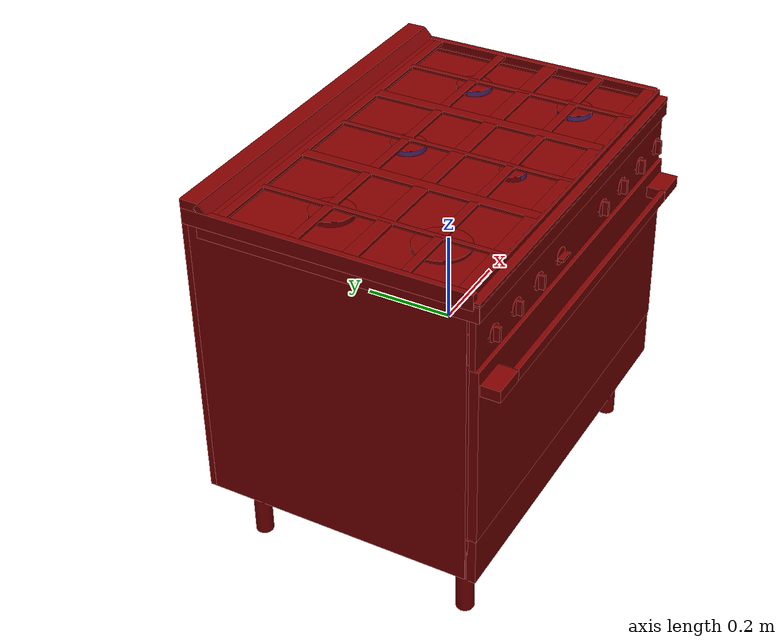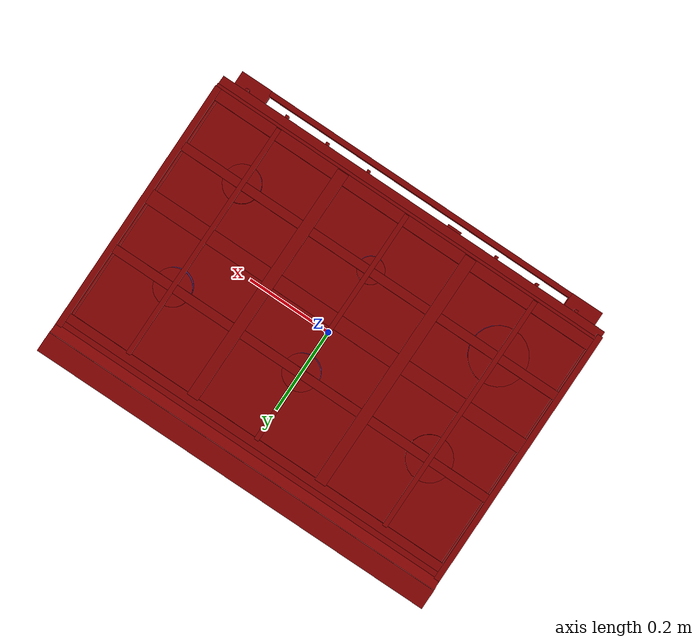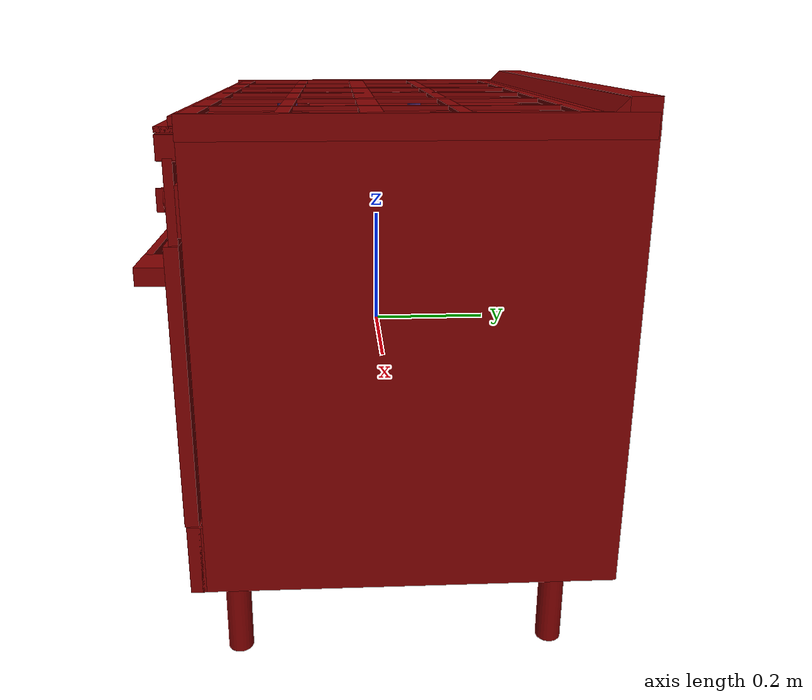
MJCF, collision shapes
<?xml version='1.0' encoding='UTF-8'?>
<mujoco model="model">
  <compiler angle="radian"/>
  <asset>
    <mesh file="visuals/knob_front_center.obj" name="knob_front_center_vis"/>
    <mesh file="visuals/knob_front_left.obj" name="knob_front_left_vis"/>
    <mesh file="visuals/knob_front_right.obj" name="knob_front_right_vis"/>
    <mesh file="visuals/knob_rear_center.obj" name="knob_rear_center_vis"/>
    <mesh file="visuals/knob_rear_left.obj" name="knob_rear_left_vis"/>
    <mesh file="visuals/knob_rear_right.obj" name="knob_rear_right_vis"/>
    <mesh file="visuals/Body001.obj" name="Body001_vis"/>
    <mesh file="visuals/Door001.obj" name="Door001_vis"/>
    <mesh file="visuals/Door001_Clear.obj" name="Door001_Clear_vis"/>
    <mesh file="visuals/Knob001.obj" name="Knob001_vis"/>
    <mesh file="visuals/Knob002.obj" name="Knob002_vis"/>
    <mesh file="visuals/Shelf001.obj" name="Shelf001_vis"/>
    <texture file="visuals/T_BC001.png" name="Body001_material" type="2d"/>
    <material name="Body001_material" rgba="1 1 1 1.0" texture="Body001_material" shininess="0.1" specular="3"/>
    <texture file="visuals/T_BC001.png" name="knob_front_center_material" type="2d"/>
    <material name="knob_front_center_material" rgba="1 1 1 1.0" texture="knob_front_center_material" shininess="0.1" specular="1"/>
    <texture file="visuals/T_BC001.png" name="knob_front_left_material" type="2d"/>
    <material name="knob_front_left_material" rgba="1 1 1 1.0" texture="knob_front_left_material" shininess="0.1" specular="1"/>
    <texture file="visuals/T_BC001.png" name="knob_front_right_material" type="2d"/>
    <material name="knob_front_right_material" rgba="1 1 1 1.0" texture="knob_front_right_material" shininess="0.1" specular="1"/>
    <texture file="visuals/T_BC001.png" name="knob_rear_center_material" type="2d"/>
    <material name="knob_rear_center_material" rgba="1 1 1 1.0" texture="knob_rear_center_material" shininess="0.1" specular="1"/>
    <texture file="visuals/T_BC001.png" name="knob_rear_left_material" type="2d"/>
    <material name="knob_rear_left_material" rgba="1 1 1 1.0" texture="knob_rear_left_material" shininess="0.1" specular="1"/>
    <texture file="visuals/T_BC001.png" name="knob_rear_right_material" type="2d"/>
    <material name="knob_rear_right_material" rgba="1 1 1 1.0" texture="knob_rear_right_material" shininess="0.1" specular="1"/>
    <texture file="visuals/T_BC001.png" name="Door001_material" type="2d"/>
    <material name="Door001_material" rgba="1 1 1 1.0" texture="Door001_material" shininess="0.1" specular="1"/>
    <texture file="visuals/T_BC001.png" name="Door001_Clear_material" type="2d"/>
    <material name="Door001_Clear_material" rgba="1 1 1 0.5" texture="Door001_Clear_material" shininess="0.1" specular="1"/>
    <texture file="visuals/T_BC001.png" name="Knob001_material" type="2d"/>
    <material name="Knob001_material" rgba="1 1 1 1.0" texture="Knob001_material" shininess="0.1" specular="1"/>
    <texture file="visuals/T_BC001.png" name="Knob002_material" type="2d"/>
    <material name="Knob002_material" rgba="1 1 1 1.0" texture="Knob002_material" shininess="0.1" specular="1"/>
    <texture file="visuals/T_BC001.png" name="Shelf001_material" type="2d"/>
    <material name="Shelf001_material" rgba="1 1 1 1.0" texture="Shelf001_material" shininess="0.1" specular="1"/>
  </asset>
  <default>
    <default class="visual">
      <geom conaffinity="0" contype="0" group="1" type="mesh"/>
    </default>
    <default class="collision">
      <geom group="0" rgba="0.5 0 0 0.5"/>
    </default>
    <default class="spawn">
      <geom group="0" rgba="1 1 1 0.5" contype="0" conaffinity="0"/>
      <site group="0" rgba="1 1 1 0.5"/>
    </default>
    <default class="region">
      <geom group="1" conaffinity="0" contype="0" rgba="0 1 0 0"/>
    </default>
  </default>
  <worldbody>
    <body>
      <body name="object">
        <site type="cylinder" rgba="0.3 0.4 1 0.5" size="0.05971946567296982 0.005361521616578102" pos="-0.300608 -0.146582 0.393724" name="burner_on_front_left"/>
        <site type="cylinder" rgba="0.3 0.4 1 0.5" size="0.03791731595993042 0.010447603650391102" pos="-0.300049 0.093358 0.394145" name="burner_on_rear_left"/>
        <site type="cylinder" rgba="0.3 0.4 1 0.5" size="0.03809259459376335 0.010447603650391102" pos="-0.000483 0.093363 0.394145" name="burner_on_rear_center"/>
        <site type="cylinder" rgba="0.3 0.4 1 0.5" size="0.03778857737779617 0.010447603650391102" pos="0.300054 0.093369 0.394145" name="burner_on_rear_right"/>
        <site type="cylinder" rgba="0.3 0.4 1 0.5" size="0.03778857737779617 0.010447603650391102" pos="0.300065 -0.147075 0.394145" name="burner_on_front_right"/>
        <site type="cylinder" rgba="0.3 0.4 1 0.5" size="0.027299582958221436 0.010447603650391102" pos="-0.000405 -0.147058 0.394145" name="burner_on_front_center"/>
        <geom mesh="Body001_vis" type="mesh" solimp="0.998 0.998 0.001" solref="0.001 1" density="100" friction="0.95 0.3 0.1" class="visual" material="Body001_material"/>
        <geom class="collision" type="cylinder" pos="-0.374417 -0.238771 -0.357107" size="0.01991221494972706 0.07708404213190079" quat="1.0 0.0 0.0 0.0"/>
        <geom class="collision" type="cylinder" pos="-0.374417 0.265539 -0.357107" size="0.01991221494972706 0.07708404213190079" quat="1.0 0.0 0.0 0.0"/>
        <geom class="collision" type="cylinder" pos="0.374611 -0.238771 -0.357107" size="0.01991221494972706 0.07708404213190079" quat="1.0 0.0 0.0 0.0"/>
        <geom class="collision" type="cylinder" pos="0.374611 0.265539 -0.357107" size="0.01991221494972706 0.07708404213190079" quat="1.0 0.0 0.0 0.0"/>
        <geom class="collision" type="box" pos="0.000318 -0.286421 0.306626" size="0.44811561703681946 0.006387270055711269 0.05663163214921951" quat="1.0 0.0 0.0 0.0"/>
        <geom class="collision" type="box" pos="-0.441177 0.033996 0.060406" size="0.0072135645896196365 0.30922675132751465 0.340255469083786" quat="1.0 0.0 0.0 0.0"/>
        <geom class="collision" type="box" pos="0.000318 -0.288044 0.376471" size="0.44811561703681946 0.01280302181839943 0.016130495816469193" quat="1.0 0.0 0.0 0.0"/>
        <geom class="collision" type="box" pos="0.000318 -0.288044 0.398692" size="0.44811561703681946 0.012802680023014545 0.0037437546998262405" quat="1.0 0.0 0.0 0.0"/>
        <geom class="collision" type="box" pos="0.000318 -0.288044 0.398692" size="0.44811561703681946 0.012802692130208015 0.0037437546998262405" quat="1.0 0.0 0.0 0.0"/>
        <geom class="collision" type="box" pos="0.000318 -0.276425 0.409435" size="0.44811561703681946 0.005882293451577425 0.0056346203200519085" quat="1.0 0.0 0.0 0.0"/>
        <geom class="collision" type="box" pos="0.440567 0.034291 0.060406" size="0.008669186383485794 0.3095216751098633 0.340255469083786" quat="1.0 0.0 0.0 0.0"/>
        <geom class="collision" type="box" pos="-0.000028 0.337028 0.060227" size="0.4483974277973175 0.006954644341021776 0.3402632474899292" quat="1.0 0.0 0.0 0.0"/>
        <geom class="collision" type="box" pos="-0.000028 0.322509 0.414454" size="0.4483974277973175 0.02128090336918831 0.02307649329304695" quat="1.0 0.0 0.0 0.0"/>
        <geom class="collision" type="box" pos="-0.000028 0.295433 0.418958" size="0.4483974277973175 0.008444877341389656 0.015956154093146324" quat="0.9272530674934387 -0.3744352459907532 -8.31413395009135e-17 4.2003301217554436e-24"/>
        <geom class="collision" type="box" pos="-0.000028 0.271621 0.404442" size="0.4483974277973175 0.008444877341389656 0.011302200146019459" quat="1.0 0.0 0.0 0.0"/>
        <geom class="collision" type="box" pos="-0.000028 0.005259 0.376450" size="0.4483974277973175 0.3050737977027893 0.017155971378087997" quat="1.0 0.0 0.0 0.0"/>
        <geom class="collision" type="box" pos="-0.000028 0.258640 0.412740" size="0.4483974277973175 0.009496590122580528 0.0032089657615870237" quat="1.0 0.0 0.0 0.0"/>
        <geom class="collision" type="box" pos="-0.000028 0.097240 0.412740" size="0.4483974277973175 0.009496590122580528 0.0032089671585708857" quat="1.0 0.0 0.0 0.0"/>
        <geom class="collision" type="box" pos="-0.000028 -0.143114 0.412740" size="0.4483974277973175 0.009496590122580528 0.0032089687883853912" quat="1.0 0.0 0.0 0.0"/>
        <geom class="collision" type="box" pos="-0.000028 -0.263401 0.412740" size="0.4483974277973175 0.012513361871242523 0.003209048183634877" quat="1.0 0.0 0.0 0.0"/>
        <geom class="collision" type="box" pos="-0.000028 -0.025630 0.412740" size="0.44839397072792053 0.015918996185064316 0.0032089718151837587" quat="1.0 0.0 0.0 0.0"/>
        <geom class="collision" type="box" pos="0.000086 -0.010888 0.412769" size="0.005101148970425129 0.2636895477771759 0.0032927768770605326" quat="1.0 0.0 0.0 0.0"/>
        <geom class="collision" type="box" pos="-0.443043 0.027113 0.400742" size="0.006303887814283371 0.3157375156879425 0.017155971378087997" quat="1.0 0.0 0.0 0.0"/>
        <geom class="collision" type="box" pos="0.442868 0.032573 0.400742" size="0.0066222078166902065 0.30869367718696594 0.01715586520731449" quat="1.0 0.0 0.0 0.0"/>
        <geom class="collision" type="box" pos="-0.300814 -0.010888 0.412769" size="0.005101148970425129 0.26368990540504456 0.0032927768770605326" quat="1.0 0.0 0.0 0.0"/>
        <geom class="collision" type="box" pos="0.300033 -0.010888 0.412769" size="0.005101148970425129 0.2636900544166565 0.0032927768770605326" quat="1.0 0.0 0.0 0.0"/>
        <geom class="collision" type="box" pos="-0.149616 -0.010888 0.412769" size="0.012458601966500282 0.26369017362594604 0.0032927768770605326" quat="1.0 0.0 0.0 0.0"/>
        <geom class="collision" type="box" pos="0.149341 -0.010888 0.412769" size="0.012458601966500282 0.2636902928352356 0.0032927768770605326" quat="1.0 0.0 0.0 0.0"/>
        <geom class="collision" type="cylinder" pos="-0.301731 -0.146141 0.389525" size="0.060145411640405655 0.010829738341271877" quat="1.0 0.0 0.0 0.0"/>
        <geom class="collision" type="cylinder" pos="-0.301112 0.095022 0.391330" size="0.04750558361411095 0.013851655647158623" quat="1.0 0.0 0.0 0.0"/>
        <geom class="collision" type="cylinder" pos="0.000453 0.095090 0.390416" size="0.038265690207481384 0.014614773914217949" quat="1.0 0.0 0.0 0.0"/>
        <geom class="collision" type="cylinder" pos="0.301330 0.096947 0.391001" size="0.039082303643226624 0.014614773914217949" quat="1.0 0.0 0.0 0.0"/>
        <geom class="collision" type="cylinder" pos="0.301330 -0.145817 0.391001" size="0.039082303643226624 0.014614773914217949" quat="1.0 0.0 0.0 0.0"/>
        <geom class="collision" type="cylinder" pos="-0.001586 -0.145817 0.391001" size="0.027926258742809296 0.014614773914217949" quat="1.0 0.0 0.0 0.0"/>
        <geom class="collision" type="box" pos="-0.429563 0.013459 0.046606" size="0.0053916811011731625 0.2821773886680603 0.0058637959882617" quat="1.0 0.0 0.0 0.0"/>
        <geom class="collision" type="box" pos="0.428989 0.013459 0.046606" size="0.0053916811011731625 0.2821773886680603 0.005863790400326252" quat="1.0 0.0 0.0 0.0"/>
        <geom class="collision" type="box" pos="0.000318 -0.288605 -0.225733" size="0.44802048802375793 0.01008778065443039 0.0553557462990284" quat="1.0 0.0 0.0 0.0"/>
        <geom class="collision" type="box" pos="0.000318 0.022609 -0.226015" size="0.44802048802375793 0.30385076999664307 0.05408773571252823" quat="1.0 0.0 0.0 0.0"/>
        <geom class="collision" type="box" pos="0.000318 0.001566 0.294366" size="0.4480198621749878 0.28238245844841003 0.03429921716451645" quat="1.0 0.0 0.0 0.0"/>
        <geom class="collision" type="box" pos="-0.149616 -0.001068 0.380624" size="0.012458601966500282 0.27348652482032776 0.0032927768770605326" quat="1.0 0.0 0.0 0.0"/>
        <geom class="collision" type="box" pos="0.152339 -0.001068 0.380624" size="0.012458601966500282 0.27348652482032776 0.0032927768770605326" quat="1.0 0.0 0.0 0.0"/>
        <body name="knob_front_center">
          <joint axis="0.0 -1.0 0.0" pos="-0.194698 -0.293361 0.301646" limited="true" name="knob_front_center_joint" range="0.0 3.141592653589793" type="hinge" damping="0.05" armature="0.001"/>
          <geom mesh="knob_front_center_vis" type="mesh" solimp="0.998 0.998 0.001" solref="0.001 1" density="100" friction="0.95 0.3 0.1" class="visual" material="knob_front_center_material"/>
          <geom class="collision" type="cylinder" pos="-0.195135 -0.298800 0.302227" size="0.01890557073056698 0.0015580850886180997" quat="0.7071068286895752 0.7071067690849304 -1.5700924318127872e-16 -5.9269340452702814e-24"/>
          <geom class="collision" type="box" pos="-0.195135 -0.306065 0.302227" size="0.0036322420928627253 0.006429062224924564 0.015848379582166672" quat="1.0 0.0 0.0 0.0" name="knob_front_center_main"/>
        </body>
        <body name="knob_front_left">
          <joint axis="0.0 -1.0 0.0" pos="-0.386520 -0.293361 0.301646" limited="true" name="knob_front_left_joint" range="0.0 3.141592653589793" type="hinge" damping="0.05" armature="0.001"/>
          <geom mesh="knob_front_left_vis" type="mesh" solimp="0.998 0.998 0.001" solref="0.001 1" density="100" friction="0.95 0.3 0.1" class="visual" material="knob_front_left_material"/>
          <geom class="collision" type="cylinder" pos="-0.386328 -0.298800 0.302227" size="0.01890557073056698 0.0015580850886180997" quat="0.7071068286895752 0.7071067690849304 -1.5700924318127872e-16 -5.9269340452702814e-24"/>
          <geom class="collision" type="box" pos="-0.386328 -0.306065 0.302227" size="0.0036322488449513912 0.006429074332118034 0.015848379582166672" quat="1.0 0.0 0.0 0.0" name="knob_front_left_main"/>
        </body>
        <body name="knob_front_right">
          <joint axis="0.0 -1.0 0.0" pos="0.402902 -0.293361 0.301646" limited="true" name="knob_front_right_joint" range="0.0 3.141592653589793" type="hinge" damping="0.05" armature="0.001"/>
          <geom mesh="knob_front_right_vis" type="mesh" solimp="0.998 0.998 0.001" solref="0.001 1" density="100" friction="0.95 0.3 0.1" class="visual" material="knob_front_right_material"/>
          <geom class="collision" type="cylinder" pos="0.402993 -0.298800 0.302227" size="0.01890557073056698 0.0015580850886180997" quat="0.7071068286895752 0.7071067690849304 -1.5700924318127872e-16 -5.9269340452702814e-24"/>
          <geom class="collision" type="box" pos="0.402993 -0.306065 0.302227" size="0.0036322246305644512 0.006429031491279602 0.015848379582166672" quat="1.0 0.0 0.0 0.0" name="knob_front_right_main"/>
        </body>
        <body name="knob_rear_center">
          <joint axis="0.0 -1.0 0.0" pos="0.210649 -0.293361 0.301646" limited="true" name="knob_rear_center_joint" range="0.0 3.141592653589793" type="hinge" damping="0.05" armature="0.001"/>
          <geom mesh="knob_rear_center_vis" type="mesh" solimp="0.998 0.998 0.001" solref="0.001 1" density="100" friction="0.95 0.3 0.1" class="visual" material="knob_rear_center_material"/>
          <geom class="collision" type="cylinder" pos="0.210578 -0.298800 0.302227" size="0.01890557073056698 0.0015580850886180997" quat="0.7071068286895752 0.7071067690849304 -1.5700924318127872e-16 -5.9269340452702814e-24"/>
          <geom class="collision" type="box" pos="0.210578 -0.306065 0.302227" size="0.003632231615483761 0.006429043598473072 0.015848379582166672" quat="1.0 0.0 0.0 0.0" name="knob_rear_center_main"/>
        </body>
        <body name="knob_rear_left">
          <joint axis="0.0 -1.0 0.0" pos="-0.292579 -0.293361 0.301646" limited="true" name="knob_rear_left_joint" range="0.0 3.141592653589793" type="hinge" damping="0.05" armature="0.001"/>
          <geom mesh="knob_rear_left_vis" type="mesh" solimp="0.998 0.998 0.001" solref="0.001 1" density="100" friction="0.95 0.3 0.1" class="visual" material="knob_rear_left_material"/>
          <geom class="collision" type="cylinder" pos="-0.292560 -0.298800 0.302227" size="0.01890557073056698 0.0015580850886180997" quat="0.7071068286895752 0.7071067690849304 -1.5700924318127872e-16 -5.9269340452702814e-24"/>
          <geom class="collision" type="box" pos="-0.292560 -0.306065 0.302227" size="0.0036322453524917364 0.006429068278521299 0.015848379582166672" quat="1.0 0.0 0.0 0.0" name="knob_rear_left_main"/>
        </body>
        <body name="knob_rear_right">
          <joint axis="0.0 -1.0 0.0" pos="0.307330 -0.293361 0.301646" limited="true" name="knob_rear_right_joint" range="0.0 3.141592653589793" type="hinge" damping="0.05" armature="0.001"/>
          <geom mesh="knob_rear_right_vis" type="mesh" solimp="0.998 0.998 0.001" solref="0.001 1" density="100" friction="0.95 0.3 0.1" class="visual" material="knob_rear_right_material"/>
          <geom class="collision" type="cylinder" pos="0.307339 -0.298800 0.302227" size="0.01890557073056698 0.0015580850886180997" quat="0.7071068286895752 0.7071067690849304 -1.5700924318127872e-16 -5.9269340452702814e-24"/>
          <geom class="collision" type="box" pos="0.307339 -0.306065 0.302227" size="0.003632228123024106 0.006429037544876337 0.015848379582166672" quat="1.0 0.0 0.0 0.0" name="knob_rear_right_main"/>
        </body>
        <body name="Door001">
          <joint axis="1.0 0.0 0.0" pos="0.000016 -0.301171 -0.169261" limited="true" name="Door001_joint" range="0.0 1.5707963267948966" type="hinge" damping="1" frictionloss="1" armature=".01" stiffness="0.05"/>
          <geom mesh="Door001_vis" type="mesh" solimp="0.998 0.998 0.001" solref="0.001 1" density="100" friction="0.95 0.3 0.1" class="visual" material="Door001_material"/>
          <geom class="collision" type="box" pos="0.000318 -0.290396 0.040100" size="0.44801127910614014 0.01008736714720726 0.2086125612258911" quat="1.0 0.0 0.0 0.0"/>
          <geom class="collision" type="box" pos="-0.000000 -0.336945 0.206374" size="0.36836355924606323 0.005712307523936033 0.012895840220153332" quat="1.0 0.0 0.0 0.0"/>
          <geom class="collision" type="box" pos="0.403375 -0.321421 0.206374" size="0.03733780235052109 0.02165932022035122 0.012895840220153332" quat="1.0 0.0 0.0 0.0"/>
          <geom class="collision" type="box" pos="-0.405150 -0.321421 0.206374" size="0.03733780235052109 0.02165932022035122 0.012895840220153332" quat="1.0 0.0 0.0 0.0"/>
          <body name="Door001_Clear">
            <geom mesh="Door001_Clear_vis" type="mesh" solimp="0.998 0.998 0.001" solref="0.001 1" density="100" friction="0.95 0.3 0.1" class="visual" material="Door001_Clear_material"/>
          </body>
        </body>
        <body name="Knob001">
          <joint axis="0.0 1.0 0.0" pos="-0.095893 -0.293361 0.301646" limited="true" name="Knob001_joint" range="0.0 5.323254218582705" type="hinge" damping="0.05" armature="0.001"/>
          <geom mesh="Knob001_vis" type="mesh" solimp="0.998 0.998 0.001" solref="0.001 1" density="100" friction="0.95 0.3 0.1" class="visual" material="Knob001_material"/>
          <geom class="collision" type="cylinder" pos="-0.095355 -0.298800 0.302227" size="0.01890557073056698 0.0015580850886180997" quat="0.7071068286895752 0.7071067690849304 -1.5700924318127872e-16 -5.9269340452702814e-24"/>
          <geom class="collision" type="box" pos="-0.094923 -0.306065 0.302227" size="0.01584886573255062 0.006429056636989117 0.003632118459790945" quat="1.0 0.0 0.0 0.0"/>
        </body>
        <body name="Knob002">
          <joint axis="0.0 1.0 0.0" pos="0.111752 -0.293361 0.301646" limited="true" name="Knob002_joint" range="0.0 5.672320068981571" type="hinge" damping="0.05" armature="0.001"/>
          <geom mesh="Knob002_vis" type="mesh" solimp="0.998 0.998 0.001" solref="0.001 1" density="100" friction="0.95 0.3 0.1" class="visual" material="Knob002_material"/>
          <geom class="collision" type="cylinder" pos="0.111631 -0.298800 0.302227" size="0.01890557073056698 0.0015580850886180997" quat="0.7071068286895752 0.7071067690849304 -1.5700924318127872e-16 -5.9269340452702814e-24"/>
          <geom class="collision" type="box" pos="0.111631 -0.306065 0.302227" size="0.0036322351079434156 0.006429050117731094 0.015848379582166672" quat="1.0 0.0 0.0 0.0"/>
        </body>
        <body name="Shelf001">
          <joint axis="0.0 -1.0 0.0" pos="-0.000371 -0.005892 0.054952" limited="true" name="Shelf001_joint" range="0.0 0.4" type="slide" damping="1" frictionloss="1" armature=".01" stiffness="0.05"/>
          <geom mesh="Shelf001_vis" type="mesh" solimp="0.998 0.998 0.001" solref="0.001 1" density="100" friction="0.95 0.3 0.1" class="visual" material="Shelf001_material"/>
          <geom class="collision" type="box" pos="-0.001263 -0.003332 0.056369" size="0.4324003756046295 0.26651009917259216 0.0036103716120123863" quat="1.0 0.0 0.0 0.0"/>
        </body>
        <site name="burner_front_left_place_site" type="cylinder" rgba="0.3 0.4 1 0" size="0.05971946567296982 0.005361521616578102" pos="-0.300608 -0.146582 0.393724"/>
        <site name="burner_rear_left_place_site" type="cylinder" rgba="0.3 0.4 1 0" size="0.03791731595993042 0.010447603650391102" pos="-0.300049 0.093358 0.394145"/>
        <site name="burner_rear_center_place_site" type="cylinder" rgba="0.3 0.4 1 0" size="0.03809259459376335 0.010447603650391102" pos="-0.000483 0.093363 0.394145"/>
        <site name="burner_rear_right_place_site" type="cylinder" rgba="0.3 0.4 1 0" size="0.03778857737779617 0.010447603650391102" pos="0.300054 0.093369 0.394145"/>
        <site name="burner_front_right_place_site" type="cylinder" rgba="0.3 0.4 1 0" size="0.03778857737779617 0.010447603650391102" pos="0.300065 -0.147075 0.394145"/>
        <site name="burner_front_center_place_site" type="cylinder" rgba="0.3 0.4 1 0" size="0.027299582958221436 0.010447603650391102" pos="-0.000405 -0.147058 0.394145"/>
        <geom class="region" name="reg_main" type="box" pos="0.0 0.020959499999999992 -0.021606999999999987" size="0.45 0.32362650000000004 0.414757"/>
        <geom class="region" name="reg_int" type="box" pos="-0.00038599999999999746 0.029372499999999996 0.0365815" size="0.434796 0.30964250000000004 0.21247349999999998"/>
      </body>
    </body>
  </worldbody>
  <actuator>
    <motor name="knob_front_center_joint_actuator" joint="knob_front_center_joint" gear="10"/>
    <motor name="knob_front_left_joint_actuator" joint="knob_front_left_joint" gear="10"/>
    <motor name="knob_front_right_joint_actuator" joint="knob_front_right_joint" gear="10"/>
    <motor name="knob_rear_center_joint_actuator" joint="knob_rear_center_joint" gear="10"/>
    <motor name="knob_rear_left_joint_actuator" joint="knob_rear_left_joint" gear="10"/>
    <motor name="knob_rear_right_joint_actuator" joint="knob_rear_right_joint" gear="10"/>
    <motor name="Door001_joint_actuator" joint="Door001_joint" gear="50"/>
    <motor name="Knob001_joint_actuator" joint="Knob001_joint" gear="50"/>
    <motor name="Knob002_joint_actuator" joint="Knob002_joint" gear="50"/>
    <motor name="Shelf001_joint_actuator" joint="Shelf001_joint" gear="50"/>
  </actuator>
</mujoco>
